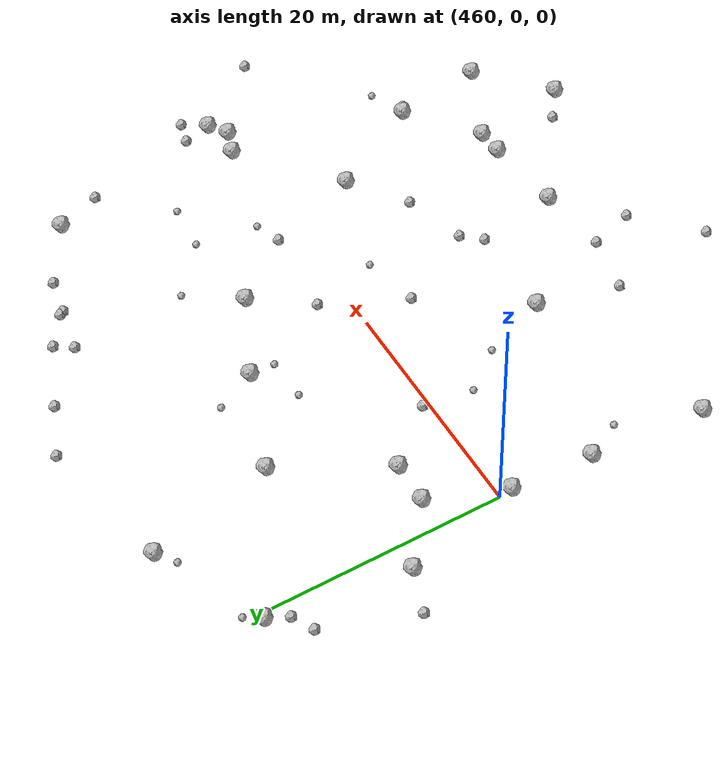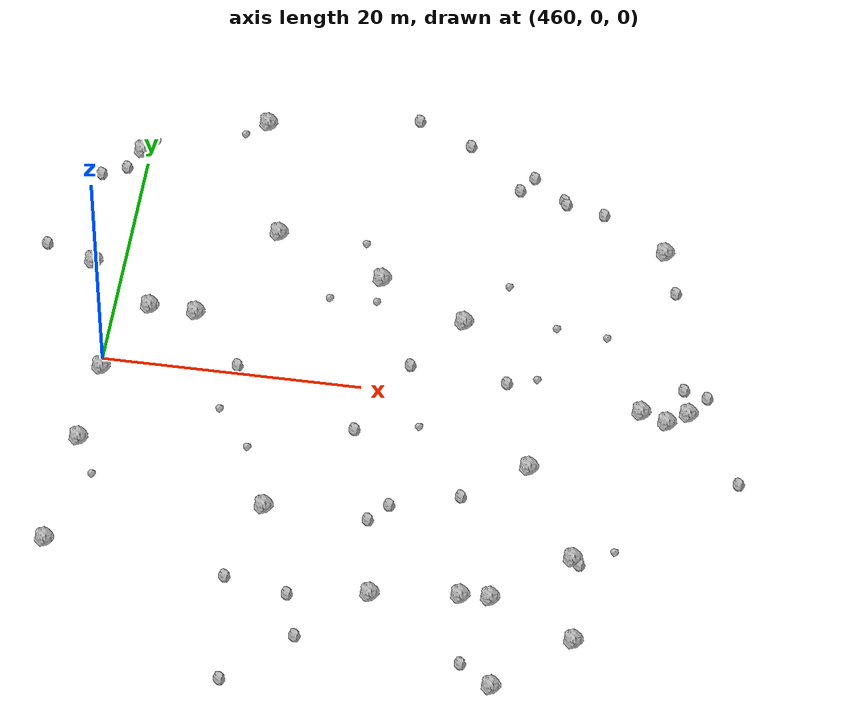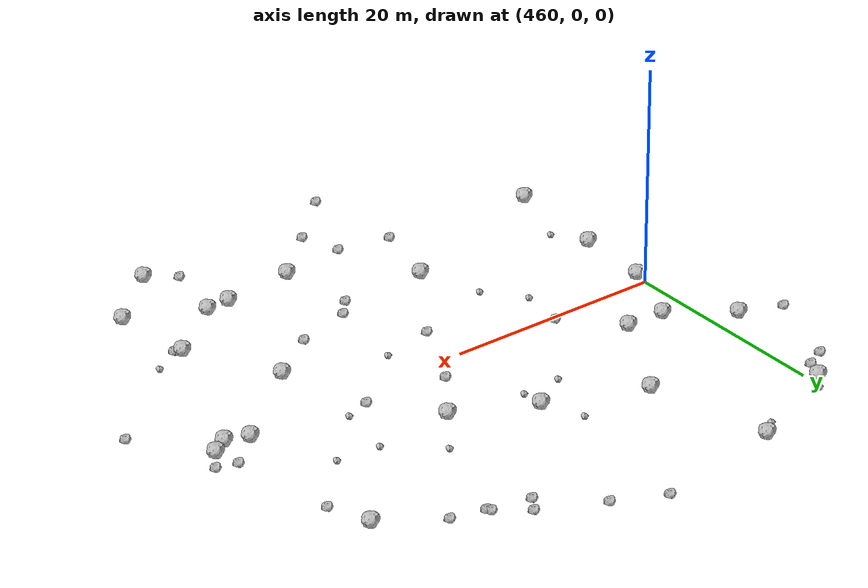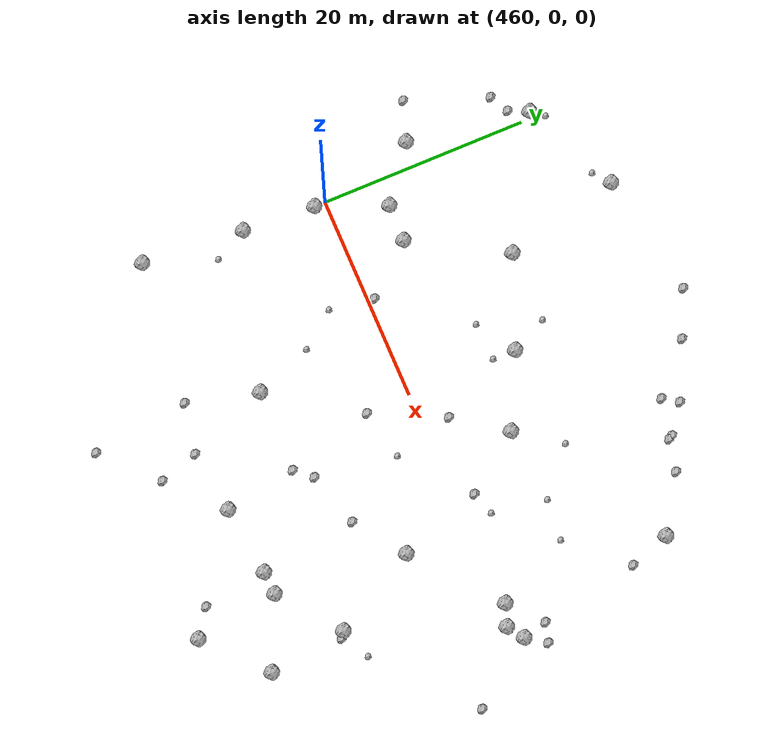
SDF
<sdf version="1.6">
 <world name="default">
  <include><uri>model://sun</uri></include>
  <model name="rock1_12_4">
   <include><uri>model://rock1</uri><pose>490.2062143196415 -18.700968598108577 0.5 0 0 0</pose></include>
  </model>
  <model name="rock1_12_5">
   <include><uri>model://rock1</uri><pose>501.4549899424696 16.396454321442093 0.5 0 0 0</pose></include>
  </model>
  <model name="rock1_12_6">
   <include><uri>model://rock1</uri><pose>505.00325694952096 0.7342420382960313 0.5 0 0 0</pose></include>
  </model>
  <model name="rock1_12_7">
   <include><uri>model://rock1</uri><pose>459.64341861287977 -8.121148503444847 0.5 0 0 0</pose></include>
  </model>
  <model name="rock1_12_8">
   <include><uri>model://rock1</uri><pose>486.93964552731916 7.258587141857909 0.5 0 0 0</pose></include>
  </model>
  <model name="rock1_12_9">
   <include><uri>model://rock1</uri><pose>493.5515907439777 -26.549570357155332 0.5 0 0 0</pose></include>
  </model>
  <model name="rock1_12_10">
   <include><uri>model://rock1</uri><pose>503.4705130715303 -0.3200989762396169 0.5 0 0 0</pose></include>
  </model>
  <model name="rock1_12_11">
   <include><uri>model://rock1</uri><pose>460.09819584658504 -1.088539378688619 0.5 0 0 0</pose></include>
  </model>
  <model name="rock1_12_12">
   <include><uri>model://rock1</uri><pose>501.43878927645756 0.4118019365166141 0.5 0 0 0</pose></include>
  </model>
  <model name="rock1_12_13">
   <include><uri>model://rock1</uri><pose>471.4402526167289 14.126730752029971 0.5 0 0 0</pose></include>
  </model>
  <model name="rock1_12_14">
   <include><uri>model://rock1</uri><pose>457.6415731303632 9.245047071729658 0.5 0 0 0</pose></include>
  </model>
  <model name="rock1_12_15">
   <include><uri>model://rock1</uri><pose>492.4193491674404 -18.5820087044504 0.5 0 0 0</pose></include>
  </model>
  <model name="rock1_12_16">
   <include><uri>model://rock1</uri><pose>474.5275449340871 -12.569311438113846 0.5 0 0 0</pose></include>
  </model>
  <model name="rock1_12_17">
   <include><uri>model://rock1</uri><pose>458.8720898777329 -17.946280103573066 0.5 0 0 0</pose></include>
  </model>
  <model name="rock1_12_18">
   <include><uri>model://rock1</uri><pose>480.06803629073266 10.66084683510816 0.5 0 0 0</pose></include>
  </model>
  <model name="rock1_12_19">
   <include><uri>model://rock1</uri><pose>462.72786673582465 5.3886100079162205 0.5 0 0 0</pose></include>
  </model>
  <model name="rock1_12_20">
   <include><uri>model://rock1</uri><pose>498.97714756830294 -21.58281503929529 0.5 0 0 0</pose></include>
  </model>
  <model name="rock1_12_21">
   <include><uri>model://rock1</uri><pose>493.68810805624764 -6.082538396990188 0.5 0 0 0</pose></include>
  </model>
  <model name="rock1_12_22">
   <include><uri>model://rock1</uri><pose>498.01355418398276 -14.141461040048359 0.5 0 0 0</pose></include>
  </model>
  <model name="rock1_12_23">
   <include><uri>model://rock1</uri><pose>483.5635795502443 -19.497343307527295 0.5 0 0 0</pose></include>
  </model>
  <model name="rock1_12_24">
   <include><uri>model://rock1</uri><pose>459.4594625575836 21.07047108916865 0.5 0 0 0</pose></include>
  </model>
  <model name="rock1_12_25">
   <include><uri>model://rock1</uri><pose>468.80906219080555 25.317912988286338 0.5 0 0 0</pose></include>
  </model>
  <model name="rock1_12_26">
   <include><uri>model://rock1</uri><pose>466.3516593227754 5.273683975808275 0.5 0 0 0</pose></include>
  </model>
  <model name="rock2_12_0">
   <include><uri>model://rock2</uri><pose>478.6482620951655 -23.993058062802348 0.3 0 0 0</pose></include>
  </model>
  <model name="rock2_12_1">
   <include><uri>model://rock2</uri><pose>498.5209052056182 -14.529770911582084 0.3 0 0 0</pose></include>
  </model>
  <model name="rock2_12_2">
   <include><uri>model://rock2</uri><pose>456.63818376232086 18.30809221560895 0.3 0 0 0</pose></include>
  </model>
  <model name="rock2_12_3">
   <include><uri>model://rock2</uri><pose>490.4371550962444 22.72851755343421 0.3 0 0 0</pose></include>
  </model>
  <model name="rock2_12_4">
   <include><uri>model://rock2</uri><pose>483.78397994703846 -11.036081224067487 0.3 0 0 0</pose></include>
  </model>
  <model name="rock2_12_5">
   <include><uri>model://rock2</uri><pose>506.23567299615576 2.582771813694812 0.3 0 0 0</pose></include>
  </model>
  <model name="rock2_12_6">
   <include><uri>model://rock2</uri><pose>483.43652883578136 2.546302146497908 0.3 0 0 0</pose></include>
  </model>
  <model name="rock2_12_7">
   <include><uri>model://rock2</uri><pose>496.289701263009 19.711511456015295 0.3 0 0 0</pose></include>
  </model>
  <model name="rock2_12_8">
   <include><uri>model://rock2</uri><pose>504.39437556139706 3.101616394637759 0.3 0 0 0</pose></include>
  </model>
  <model name="rock2_12_9">
   <include><uri>model://rock2</uri><pose>493.2486095605749 20.395365897223954 0.3 0 0 0</pose></include>
  </model>
  <model name="rock2_12_10">
   <include><uri>model://rock2</uri><pose>482.39794670250603 -12.61705572973499 0.3 0 0 0</pose></include>
  </model>
  <model name="rock2_12_11">
   <include><uri>model://rock2</uri><pose>470.3639023405686 0.632314682756622 0.3 0 0 0</pose></include>
  </model>
  <model name="rock2_12_12">
   <include><uri>model://rock2</uri><pose>453.74943218010554 10.605394093234054 0.3 0 0 0</pose></include>
  </model>
  <model name="rock2_12_13">
   <include><uri>model://rock2</uri><pose>488.976083715902 -9.460146942101616 0.3 0 0 0</pose></include>
  </model>
  <model name="rock2_12_14">
   <include><uri>model://rock2</uri><pose>509.4376538757217 -5.3230713435325825 0.3 0 0 0</pose></include>
  </model>
  <model name="rock2_12_15">
   <include><uri>model://rock2</uri><pose>493.0491074337898 20.750639005796486 0.3 0 0 0</pose></include>
  </model>
  <model name="rock2_12_16">
   <include><uri>model://rock2</uri><pose>458.50581451300116 19.23819205284385 0.3 0 0 0</pose></include>
  </model>
  <model name="rock2_12_17">
   <include><uri>model://rock2</uri><pose>489.4710183757874 21.2886519562894 0.3 0 0 0</pose></include>
  </model>
  <model name="rock2_12_18">
   <include><uri>model://rock2</uri><pose>485.03746014402043 25.3491698918698 0.3 0 0 0</pose></include>
  </model>
  <model name="rock2_12_19">
   <include><uri>model://rock2</uri><pose>472.66915454686597 -19.346065704469765 0.3 0 0 0</pose></include>
  </model>
  <model name="rock2_12_20">
   <include><uri>model://rock2</uri><pose>502.71398211931574 12.57661871629081 0.3 0 0 0</pose></include>
  </model>
  <model name="rock2_12_21">
   <include><uri>model://rock2</uri><pose>473.8214489342963 -28.61423584478796 0.3 0 0 0</pose></include>
  </model>
  <model name="rock2_12_22">
   <include><uri>model://rock2</uri><pose>480.1368655992992 -4.2572754789812635 0.3 0 0 0</pose></include>
  </model>
  <model name="rock2_12_23">
   <include><uri>model://rock2</uri><pose>491.00734640074563 -24.7487785412005 0.3 0 0 0</pose></include>
  </model>
  <model name="rock2_12_24">
   <include><uri>model://rock2</uri><pose>490.9643362868212 1.8558075696338143 0.3 0 0 0</pose></include>
  </model>
  <model name="rock2_12_25">
   <include><uri>model://rock2</uri><pose>477.4972607164852 -20.285228879229294 0.3 0 0 0</pose></include>
  </model>
  <model name="rock2_12_26">
   <include><uri>model://rock2</uri><pose>480.65507420806046 27.414287999650213 0.3 0 0 0</pose></include>
  </model>
  <model name="rock3_12_0">
   <include><uri>model://rock3</uri><pose>461.19343520500865 -11.274512623901604 0.2 0 0 0</pose></include>
  </model>
  <model name="rock3_12_1">
   <include><uri>model://rock3</uri><pose>484.91791143594617 -3.270645913872386 0.2 0 0 0</pose></include>
  </model>
  <model name="rock3_12_2">
   <include><uri>model://rock3</uri><pose>500.97510998679786 -12.98550678901108 0.2 0 0 0</pose></include>
  </model>
  <model name="rock3_12_3">
   <include><uri>model://rock3</uri><pose>472.3500222922253 -7.066561921443778 0.2 0 0 0</pose></include>
  </model>
  <model name="rock3_12_4">
   <include><uri>model://rock3</uri><pose>478.31501900641103 14.158684334358952 0.2 0 0 0</pose></include>
  </model>
  <model name="rock3_12_5">
   <include><uri>model://rock3</uri><pose>460.3357142350097 22.31396650419162 0.2 0 0 0</pose></include>
  </model>
  <model name="rock3_12_6">
   <include><uri>model://rock3</uri><pose>476.3023661721728 8.317917022540655 0.2 0 0 0</pose></include>
  </model>
  <model name="rock3_12_7">
   <include><uri>model://rock3</uri><pose>494.04442524939253 7.78490963962404 0.2 0 0 0</pose></include>
  </model>
  <model name="rock3_12_8">
   <include><uri>model://rock3</uri><pose>497.9736714158405 7.401508233557479 0.2 0 0 0</pose></include>
  </model>
  <model name="rock3_12_9">
   <include><uri>model://rock3</uri><pose>489.88228854087254 11.417546559979492 0.2 0 0 0</pose></include>
  </model>
  <model name="rock3_12_10">
   <include><uri>model://rock3</uri><pose>469.6864328955075 -3.694295295644558 0.2 0 0 0</pose></include>
  </model>
  <model name="rock3_12_11">
   <include><uri>model://rock3</uri><pose>479.9500802801364 8.4607860282823 0.2 0 0 0</pose></include>
  </model>
  <model name="rock3_12_12">
   <include><uri>model://rock3</uri><pose>467.14953505459374 24.083590337803194 0.2 0 0 0</pose></include>
  </model>
  <model name="rock3_12_13">
   <include><uri>model://rock3</uri><pose>493.1851720821944 2.555388052177385 0.2 0 0 0</pose></include>
  </model>
 </world>
</sdf>
